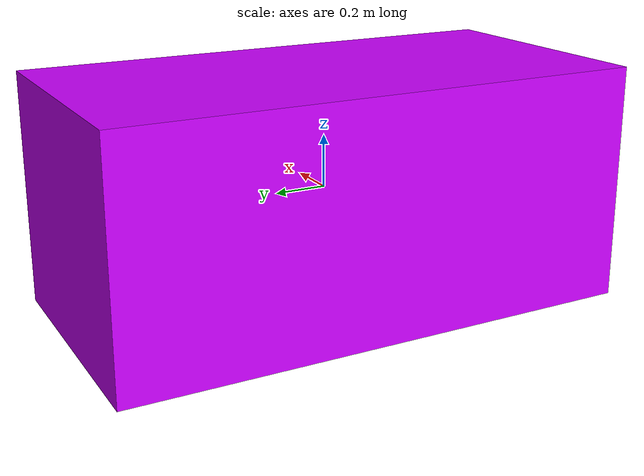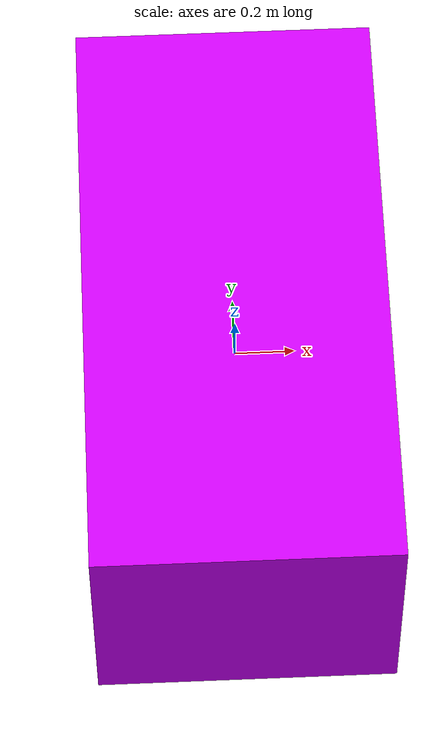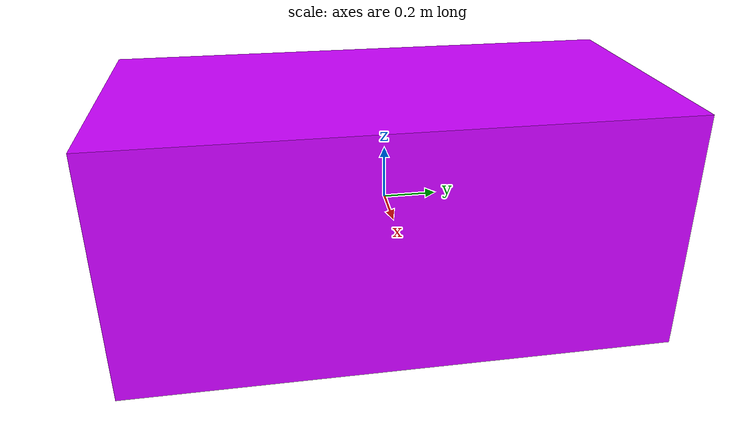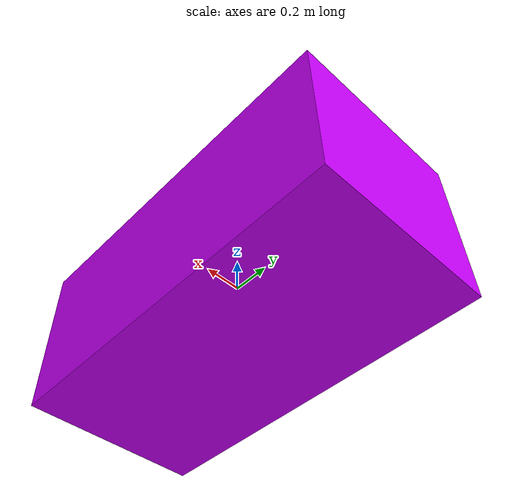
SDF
<?xml version='1.0'?>
<sdf version='1.7'>
  <model name='desk'>
    <!-- disable dynamics -->
    <static>true</static>
    <allow_auto_disable>1</allow_auto_disable>

    <!-- create physical object -->
    <link name='desk'>
      <!-- any physical properties or relations, no inertial as it should be immovable -->
      <gravity>1</gravity>
      <enable_wind>0</enable_wind>
      <self_collide>0</self_collide>
      <kinematic>0</kinematic>
      <pose>0 0 0 0 -0 0</pose>

      <!-- collision box definition -->
      <collision name='collision'>
        <laser_retro>0</laser_retro>
        <max_contacts>10</max_contacts>
        <pose>0 0 0 0 -0 0</pose>
        <geometry>
          <box>
            <size>1 2 0.9</size>
          </box>
        </geometry>
        <surface>
          <!-- make it basically impossible to move after collision -->
          <friction>
            <ode>
              <mu>100</mu>
              <mu2>100</mu2>
            </ode>
            <torsional>
              <coefficient>100</coefficient>
            </torsional>
          </friction>
          <!-- no bounce and default collision values -->
        </surface>
      </collision>

      <!-- visual definition of the wall -->
      <visual name='visual'>
        <cast_shadows>1</cast_shadows>
        <transparency>0</transparency>
        <pose>0 0 0 0 -0 0</pose>
        <material>
          <ambient>0.8 0 1 1</ambient>
          <diffuse>0.8 0 1 1</diffuse>
          <specular>1 1 1 0.5</specular>
          <emissive>0 0 0 1</emissive>
        </material>
        <geometry>
          <box>
            <size>1 2 0.9</size>
          </box>
        </geometry>
      </visual>

    </link>
  </model>
</sdf>
